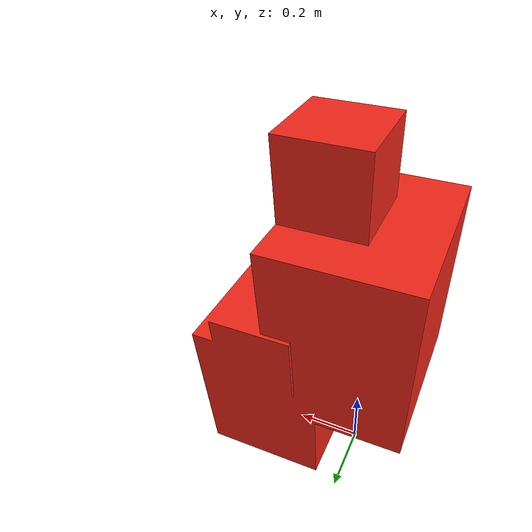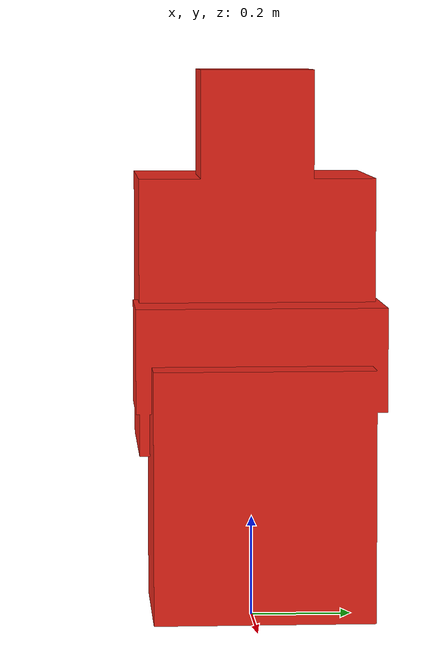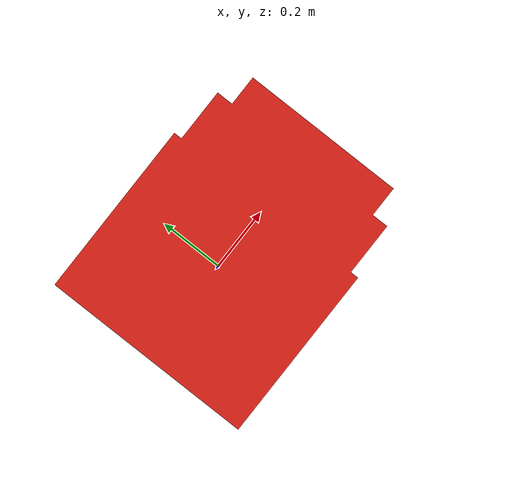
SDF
<?xml version="1.0" encoding="UTF-8"?>
<sdf version="1.9">
  <model name="human_sitting_clinging">
    <static>true</static>
    <link name="body_link">
      <!-- 3D Volumetric Humanoid Mesh with Photorealistic Texture -->
      <visual name="survivor_mesh">
        <pose>0 0 0 0 0 0</pose>
        <geometry>
          <mesh>
            <uri>model://human_sitting_clinging/meshes/sitting_huddled.obj</uri>
            <scale>1 1 1</scale>
          </mesh>
        </geometry>
        <material>
          <ambient>0.95 0.15 0.10 1.0</ambient>
          <diffuse>0.95 0.15 0.10 1.0</diffuse>
          <specular>0.1 0.1 0.1 1.0</specular>
        </material>
      </visual>

      <!-- Physical 3D Collision Volume -->
      <collision name="col">
        <pose>0.1 0 0.5 0 0 0</pose>
        <geometry><box><size>0.6 0.55 0.9</size></box></geometry>
      </collision>
    </link>
  </model>
</sdf>
